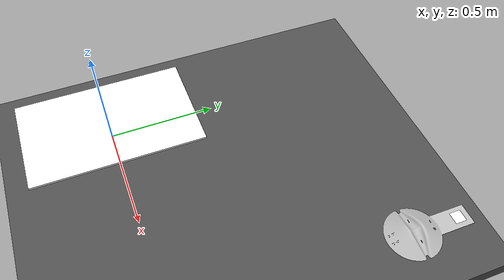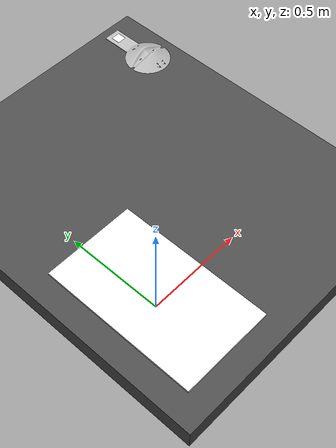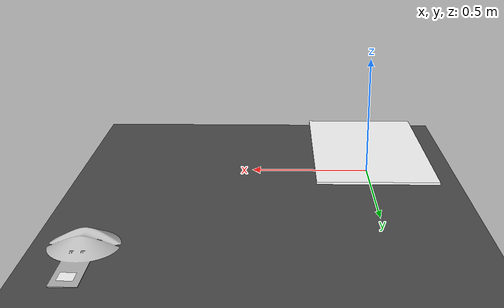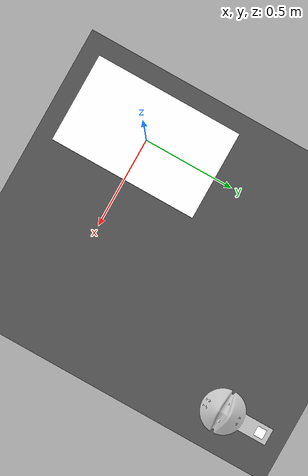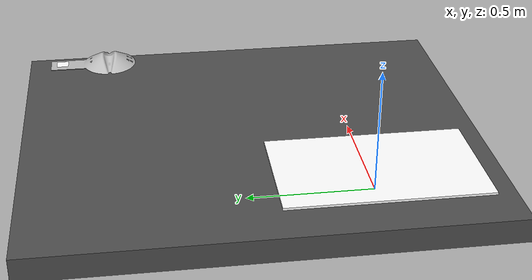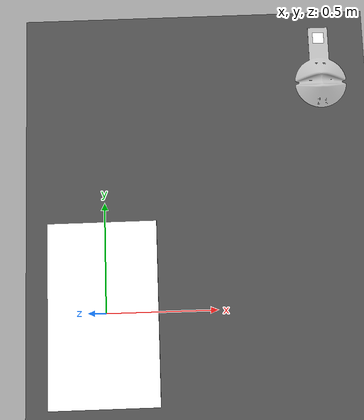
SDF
<sdf version="1.7">
 <world name="default">
  <light name="sun" type="directional">
   <pose>0 0 10 0 -0 0</pose>
   <diffuse>0.8 0.8 0.8 1</diffuse>
   <specular>0.2 0.2 0.2 1</specular>
   <attenuation>
    <range>1000</range>
    <constant>0.9</constant>
    <linear>0.01</linear>
    <quadratic>0.001</quadratic>
   </attenuation>
   <direction>-0.5 0.1 -0.9</direction>
   <spot><inner_angle>0</inner_angle><outer_angle>0</outer_angle><falloff>0</falloff></spot>
  </light>
  <model name="ground_plane">
   <static>1</static>
   <link name="link">
    <collision name="collision">
     <geometry><plane><normal>0 0 1</normal><size>100 100</size></plane></geometry>
     <surface>
      <contact><collide_bitmask>65535</collide_bitmask></contact>
      <friction><ode><mu>100</mu><mu2>50</mu2></ode></friction>
     </surface>
    </collision>
    <visual name="visual">
     <cast_shadows>0</cast_shadows>
     <geometry><plane><normal>0 0 1</normal><size>100 100</size></plane></geometry>
     <material>
      <script><uri>file://media/materials/scripts/gazebo.material</uri><name>Gazebo/Grey</name></script>
     </material>
    </visual>
   </link>
  </model>
  <gravity>0 0 -9.8</gravity>
  <magnetic_field>6e-06 2.3e-05 -4.2e-05</magnetic_field>
  <atmosphere type="adiabatic"/>
  <physics type="ode">
   <max_step_size>0.001</max_step_size>
   <real_time_factor>1</real_time_factor>
   <real_time_update_rate>1000</real_time_update_rate>
  </physics>
  <scene><ambient>0.4 0.4 0.4 1</ambient><background>0.7 0.7 0.7 1</background><shadows>1</shadows></scene>
  <spherical_coordinates>
   <surface_model>EARTH_WGS84</surface_model>
   <latitude_deg>0</latitude_deg>
   <longitude_deg>0</longitude_deg>
   <elevation>0</elevation>
   <heading_deg>0</heading_deg>
  </spherical_coordinates>
  <model name="asphalt_plane">
   <static>1</static>
   <link name="link">
    <collision name="collision"><geometry><box><size>200 200 0.1</size></box></geometry></collision>
    <visual name="visual">
     <cast_shadows>0</cast_shadows>
     <geometry><box><size>200 200 0.1</size></box></geometry>
     <material>
      <script>
       <uri>model://asphalt_plane/materials/scripts</uri>
       <uri>model://asphalt_plane/materials/textures</uri>
       <name>vrc/asphalt</name>
      </script>
      <ambient>1 1 1 1</ambient>
      <diffuse>1 1 1 1</diffuse>
      <specular>0 0 0 1</specular>
      <emissive>0.5 0.5 0.5 0</emissive>
     </material>
    </visual>
   </link>
   <pose>-0.511926 0.41652 0 0 -0 0</pose>
  </model>
  <model name="QuickConnectBase">
   <pose>1 1 0 0 0 0</pose>
   <static>false</static>
   <link name="base_link">
    <inertial>
     <mass>25.0</mass>
     <inertia><ixx>1</ixx><ixy>0</ixy><ixz>0</ixz><iyy>1</iyy><iyz>0</iyz><izz>1</izz></inertia>
    </inertial>
    <collision name="collision">
     <pose>0 0 0.125 0 0 0</pose>
     <geometry><mesh><scale>1 1 1</scale><uri>model://quick_connect_base/meshes/base.dae</uri></mesh></geometry>
     <surface><contact><ode><min_depth>0.001</min_depth><max_vel>0</max_vel></ode></contact></surface>
    </collision>
    <visual name="visual">
     <pose>0 0 0.125 0 0 0</pose>
     <geometry><mesh><scale>1 1 1</scale><uri>model://quick_connect_base/meshes/base.dae</uri></mesh></geometry>
    </visual>
   </link>
   <link name="aruco_link">
    <pose>0 0.21 0.13 0 0 0</pose>
    <visual name="visual">
     <cast_shadows>0</cast_shadows>
     <geometry><box><size>0.05 0.05 0</size></box></geometry>
     <material>
      <script>
       <uri>model://aruco_gazebo/aruco_visual_marker_0/materials/scripts</uri>
       <uri>model://aruco_gazebo/aruco_visual_marker_0/materials/textures</uri>
       <name>ArucoVisualMarker0/Marker</name>
      </script>
      <ambient>1 1 1 1</ambient>
      <diffuse>1 1 1 1</diffuse>
      <specular>0 0 0 1</specular>
      <emissive>1 1 1 0</emissive>
     </material>
    </visual>
   </link>
   <joint name="base_pad_joint" type="fixed">
    <child>aruco_link</child>
    <parent>base_link</parent>
    <axis>
     <xyz>0 0 0</xyz>
     <limit><lower>0</lower><upper>0</upper><effort>0</effort><velocity>0</velocity></limit>
     <dynamics><spring_reference>0</spring_reference><spring_stiffness>0</spring_stiffness></dynamics>
     <use_parent_model_frame>1</use_parent_model_frame>
    </axis>
   </joint>
  </model>
  <model name="chessboard">
   <static>1</static>
   <link name="link">
    <collision name="collision"><geometry><box><size>0.48 0.8 0.01</size></box></geometry></collision>
    <visual name="visual">
     <cast_shadows>0</cast_shadows>
     <geometry><box><size>0.48 0.8 0.01</size></box></geometry>
     <material>
      <script>
       <uri>model://chessboard/materials/scripts</uri>
       <uri>model://chessboard/materials/textures</uri>
       <name>Chessboard/Marker</name>
      </script>
      <ambient>1 1 1 1</ambient>
      <diffuse>1 1 1 1</diffuse>
      <specular>0 0 0 1</specular>
      <emissive>1 1 1 0</emissive>
     </material>
    </visual>
   </link>
   <pose>0 0 0.1 0 -0 0</pose>
  </model>
  <scene><ambient>0.8 0.8 0.8 1.0</ambient><shadows>0</shadows></scene>
 </world>
</sdf>
